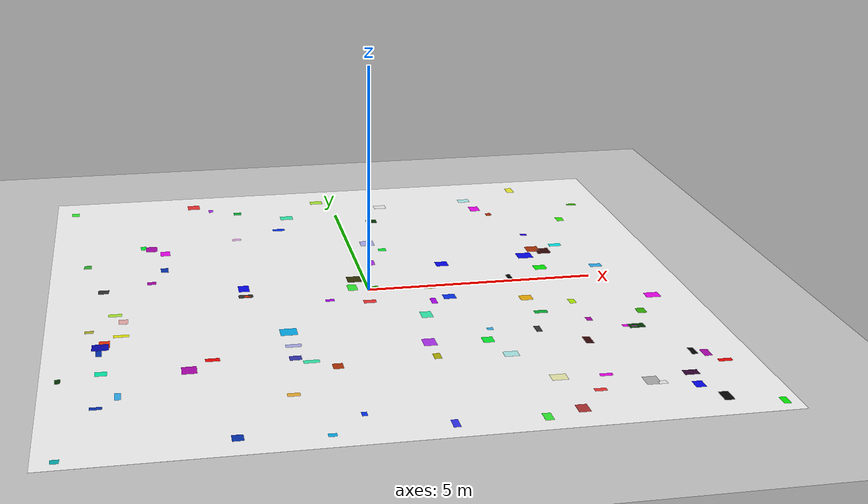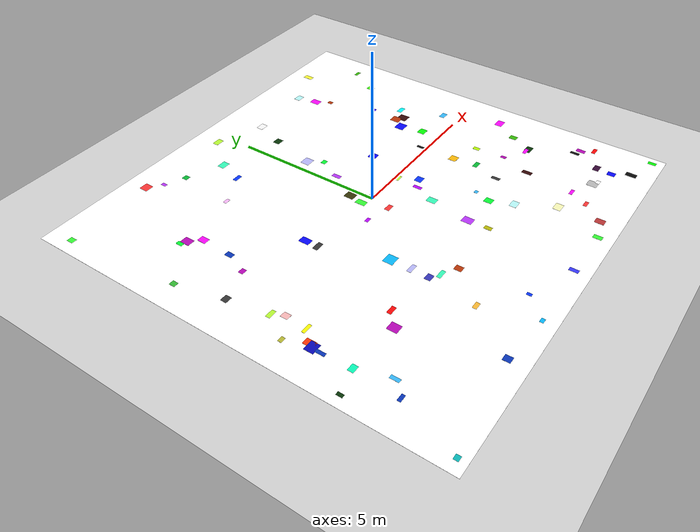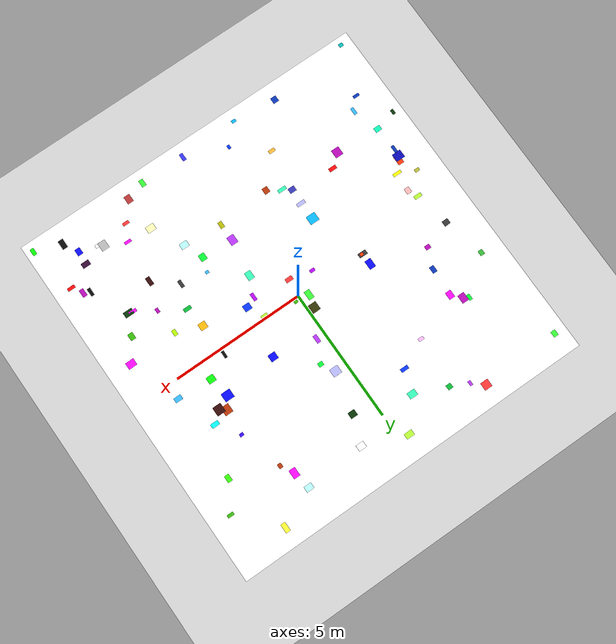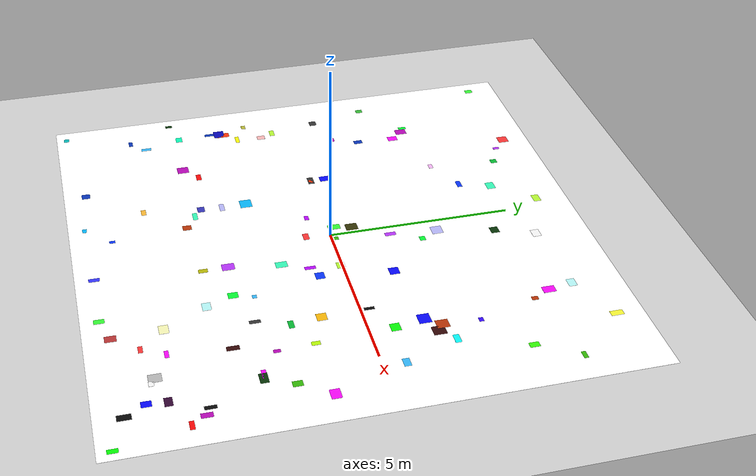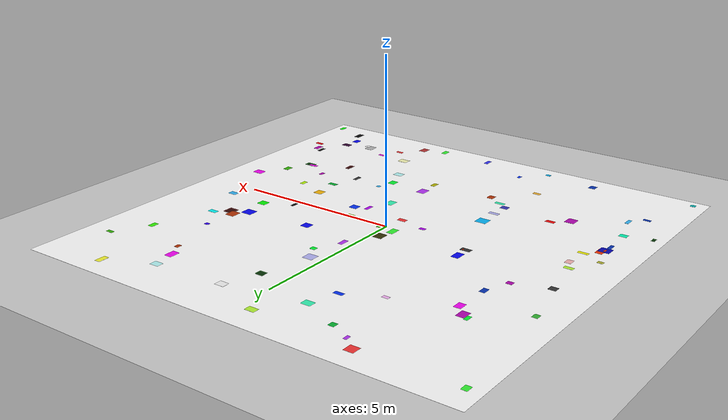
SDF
<sdf version="1.9">
 <world name="default">
  <model name="ground_plane">
   <static>true</static>
   <link name="link">
    <collision name="collision">
     <geometry><plane><normal>0 0 1</normal><size>1 1</size></plane></geometry>
    </collision>
    <visual name="visual">
     <geometry><plane><normal>0 0 1</normal><size>500 500</size></plane></geometry>
     <material>
      <ambient>0.8 0.8 0.8 1</ambient>
      <diffuse>0.8 0.8 0.8 1</diffuse>
      <specular>0.8 0.8 0.8 1</specular>
     </material>
    </visual>
    <inertial>
     <mass>1</mass>
     <inertia><ixx>1</ixx><ixy>0</ixy><ixz>0</ixz><iyy>1</iyy><iyz>0</iyz><izz>1</izz></inertia>
    </inertial>
   </link>
  </model>
  <model name="warehouse_textured_floor">
   <static>true</static>
   <link name="paint">
    <visual name="floor_surface">
     <pose>0 0 0.001 0 0 0</pose>
     <geometry><box><size>13.8 13.8 0.002</size></box></geometry>
     <material>
      <ambient>1 1 1 1</ambient>
      <diffuse>1 1 1 1</diffuse>
      <pbr>
       <metal>
        <albedo_map>model://warehouse_textures/materials/textures/floor.png</albedo_map>
        <metalness>0</metalness>
        <roughness>1</roughness>
       </metal>
      </pbr>
     </material>
    </visual>
   </link>
  </model>
  <model name="warehouse_floor_features">
   <static>true</static>
   <link name="paint">
    <visual name="paint_0">
     <pose>0.32451167921774715 1.5884171789464636 0.002 0 0 0</pose>
     <geometry><box><size>0.14356942643876205 0.30196213444852527 0.002</size></box></geometry>
     <material><ambient>0.7 0.2 0.95 1</ambient><diffuse>0.7 0.2 0.95 1</diffuse></material>
    </visual>
    <visual name="paint_1">
     <pose>-0.3405018327053462 0.174150977606927 0.002 0 0 0</pose>
     <geometry><box><size>0.2082389393504837 0.3388343355821748 0.002</size></box></geometry>
     <material><ambient>0.2 0.95 0.2 1</ambient><diffuse>0.2 0.95 0.2 1</diffuse></material>
    </visual>
    <visual name="paint_2">
     <pose>4.2453955089554265 -2.3465644710829388 0.002 0 0 0</pose>
     <geometry><box><size>0.11743923994719252 0.1812582241868887 0.002</size></box></geometry>
     <material><ambient>0.7 0.03 0.7 1</ambient><diffuse>0.7 0.03 0.7 1</diffuse></material>
    </visual>
    <visual name="paint_3">
     <pose>-5.763320836558967 -2.098971766459446 0.002 0 0 0</pose>
     <geometry><box><size>0.34205885859912716 0.30112848147361504 0.002</size></box></geometry>
     <material><ambient>0.03 0.03 0.7 1</ambient><diffuse>0.03 0.03 0.7 1</diffuse></material>
    </visual>
    <visual name="paint_4">
     <pose>-1.7112417408010483 -3.4340037091235436 0.002 0 0 0</pose>
     <geometry><box><size>0.32020923578637905 0.13175321254289554 0.002</size></box></geometry>
     <material><ambient>0.2 0.95 0.7 1</ambient><diffuse>0.2 0.95 0.7 1</diffuse></material>
    </visual>
    <visual name="paint_5">
     <pose>-6.479452356096627 -6.609298279698521 0.002 0 0 0</pose>
     <geometry><box><size>0.15971590415048786 0.1435087755282658 0.002</size></box></geometry>
     <material><ambient>0.03 0.7 0.7 1</ambient><diffuse>0.03 0.7 0.7 1</diffuse></material>
    </visual>
    <visual name="paint_6">
     <pose>1.2689115141543628 -0.8539144176918585 0.002 0 0 0</pose>
     <geometry><box><size>0.12552086458564032 0.2939839248986573 0.002</size></box></geometry>
     <material><ambient>0.7 0.03 0.95 1</ambient><diffuse>0.7 0.03 0.95 1</diffuse></material>
    </visual>
    <visual name="paint_7">
     <pose>3.557835304350397 4.886141060771419 0.002 0 0 0</pose>
     <geometry><box><size>0.24186991242991426 0.3371609067097572 0.002</size></box></geometry>
     <material><ambient>0.95 0.03 0.95 1</ambient><diffuse>0.95 0.03 0.95 1</diffuse></material>
    </visual>
    <visual name="paint_8">
     <pose>1.3395899125802542 -0.05017054715293945 0.002 0 0 0</pose>
     <geometry><box><size>0.2485330339384911 0.2168866007897095 0.002</size></box></geometry>
     <material><ambient>0.7 0.95 0.2 1</ambient><diffuse>0.7 0.95 0.2 1</diffuse></material>
    </visual>
    <visual name="paint_9">
     <pose>2.0909008860670832 -2.4909522508354653 0.002 0 0 0</pose>
     <geometry><box><size>0.1271911359793571 0.11518978911367644 0.002</size></box></geometry>
     <material><ambient>0.2 0.7 0.95 1</ambient><diffuse>0.2 0.7 0.95 1</diffuse></material>
    </visual>
    <visual name="paint_10">
     <pose>-2.695229726361613 0.49491315764346755 0.002 0 0 0</pose>
     <geometry><box><size>0.23397119537339897 0.3412238112256532 0.002</size></box></geometry>
     <material><ambient>0.03 0.03 0.95 1</ambient><diffuse>0.03 0.03 0.95 1</diffuse></material>
    </visual>
    <visual name="paint_11">
     <pose>-0.3587238350170443 6.03934564080705 0.002 0 0 0</pose>
     <geometry><box><size>0.3029233438147575 0.20641536806330268 0.002</size></box></geometry>
     <material><ambient>0.7 0.95 0.2 1</ambient><diffuse>0.7 0.95 0.2 1</diffuse></material>
    </visual>
    <visual name="paint_12">
     <pose>5.355181843132516 0.5805317546650137 0.002 0 0 0</pose>
     <geometry><box><size>0.2737444657031194 0.18165313674749828 0.002</size></box></geometry>
     <material><ambient>0.2 0.7 0.95 1</ambient><diffuse>0.2 0.7 0.95 1</diffuse></material>
    </visual>
    <visual name="paint_13">
     <pose>5.467936822663037 -2.101949337624178 0.002 0 0 0</pose>
     <geometry><box><size>0.19130534627425577 0.25457010530369306 0.002</size></box></geometry>
     <material><ambient>0.2 0.7 0.03 1</ambient><diffuse>0.2 0.7 0.03 1</diffuse></material>
    </visual>
    <visual name="paint_14">
     <pose>5.4744223540697705 3.7631636655325176 0.002 0 0 0</pose>
     <geometry><box><size>0.172278455653943 0.2604080487487658 0.002</size></box></geometry>
     <material><ambient>0.2 0.95 0.03 1</ambient><diffuse>0.2 0.95 0.03 1</diffuse></material>
    </visual>
    <visual name="paint_15">
     <pose>-2.649238062608271 0.049234822295970204 0.002 0 0 0</pose>
     <geometry><box><size>0.12742310297416856 0.11060968616473335 0.002</size></box></geometry>
     <material><ambient>0.95 0.2 0.03 1</ambient><diffuse>0.95 0.2 0.03 1</diffuse></material>
    </visual>
    <visual name="paint_16">
     <pose>-1.2356418308804313 -3.726256608642457 0.002 0 0 0</pose>
     <geometry><box><size>0.20528206580448882 0.2379104425472646 0.002</size></box></geometry>
     <material><ambient>0.7 0.2 0.03 1</ambient><diffuse>0.7 0.2 0.03 1</diffuse></material>
    </visual>
    <visual name="paint_17">
     <pose>6.0054071283181445 -1.3217255293837855 0.002 0 0 0</pose>
     <geometry><box><size>0.32141814691740556 0.25667575667077946 0.002</size></box></geometry>
     <material><ambient>0.95 0.03 0.95 1</ambient><diffuse>0.95 0.03 0.95 1</diffuse></material>
    </visual>
    <visual name="paint_18">
     <pose>0.7473825697818679 -3.597126313003904 0.002 0 0 0</pose>
     <geometry><box><size>0.1503288642895742 0.24552392403332854 0.002</size></box></geometry>
     <material><ambient>0.7 0.7 0.03 1</ambient><diffuse>0.7 0.7 0.03 1</diffuse></material>
    </visual>
    <visual name="paint_19">
     <pose>0.9596219904515415 -1.5576434282616471 0.002 0 0 0</pose>
     <geometry><box><size>0.23524246517530042 0.31234135975817157 0.002</size></box></geometry>
     <material><ambient>0.2 0.95 0.7 1</ambient><diffuse>0.2 0.95 0.7 1</diffuse></material>
    </visual>
    <visual name="paint_20">
     <pose>4.8304402483134625 6.194288580228343 0.002 0 0 0</pose>
     <geometry><box><size>0.17918842300683796 0.33824514718872245 0.002</size></box></geometry>
     <material><ambient>0.95 0.95 0.2 1</ambient><diffuse>0.95 0.95 0.2 1</diffuse></material>
    </visual>
    <visual name="paint_21">
     <pose>3.366950673963861 -1.809921932629968 0.002 0 0 0</pose>
     <geometry><box><size>0.2807241513614849 0.1442375420481826 0.002</size></box></geometry>
     <material><ambient>0.03 0.7 0.2 1</ambient><diffuse>0.03 0.7 0.2 1</diffuse></material>
    </visual>
    <visual name="paint_22">
     <pose>-3.37511354637866 -6.283704828002198 0.002 0 0 0</pose>
     <geometry><box><size>0.2125336444208949 0.22906498534652456 0.002</size></box></geometry>
     <material><ambient>0.03 0.2 0.7 1</ambient><diffuse>0.03 0.2 0.7 1</diffuse></material>
    </visual>
    <visual name="paint_23">
     <pose>-5.823334716118664 -4.752281343874696 0.002 0 0 0</pose>
     <geometry><box><size>0.23391297500655545 0.11019344439425535 0.002</size></box></geometry>
     <material><ambient>0.03 0.2 0.7 1</ambient><diffuse>0.03 0.2 0.7 1</diffuse></material>
    </visual>
    <visual name="paint_24">
     <pose>-0.9225149205609204 -0.46135233194810343 0.002 0 0 0</pose>
     <geometry><box><size>0.19173886619123953 0.1197030007977343 0.002</size></box></geometry>
     <material><ambient>0.7 0.03 0.95 1</ambient><diffuse>0.7 0.03 0.95 1</diffuse></material>
    </visual>
    <visual name="paint_25">
     <pose>-5.717497755296635 0.8051680948712026 0.002 0 0 0</pose>
     <geometry><box><size>0.22950307914587706 0.20431775489756138 0.002</size></box></geometry>
     <material><ambient>0.2 0.2 0.2 1</ambient><diffuse>0.2 0.2 0.2 1</diffuse></material>
    </visual>
    <visual name="paint_26">
     <pose>6.618003744110617 -6.519812298620999 0.002 0 0 0</pose>
     <geometry><box><size>0.13922243842650303 0.2627070011854034 0.002</size></box></geometry>
     <material><ambient>0.03 0.95 0.03 1</ambient><diffuse>0.03 0.95 0.03 1</diffuse></material>
    </visual>
    <visual name="paint_27">
     <pose>-6.081014713287996 2.367187282750776 0.002 0 0 0</pose>
     <geometry><box><size>0.1685571123393167 0.19721741750586413 0.002</size></box></geometry>
     <material><ambient>0.2 0.7 0.2 1</ambient><diffuse>0.2 0.7 0.2 1</diffuse></material>
    </visual>
    <visual name="paint_28">
     <pose>4.679779209876478 -5.43466828932999 0.002 0 0 0</pose>
     <geometry><box><size>0.16978550570136752 0.1313364734075922 0.002</size></box></geometry>
     <material><ambient>0.95 0.95 0.95 1</ambient><diffuse>0.95 0.95 0.95 1</diffuse></material>
    </visual>
    <visual name="paint_29">
     <pose>-2.597278405831614 3.6246246399486006 0.002 0 0 0</pose>
     <geometry><box><size>0.2005418460725889 0.11923613375536954 0.002</size></box></geometry>
     <material><ambient>0.95 0.7 0.95 1</ambient><diffuse>0.95 0.7 0.95 1</diffuse></material>
    </visual>
    <visual name="paint_30">
     <pose>4.964292332485555 -2.801319759440938 0.002 0 0 0</pose>
     <geometry><box><size>0.2884968496145979 0.11896555703234324 0.002</size></box></geometry>
     <material><ambient>0.95 0.03 0.95 1</ambient><diffuse>0.95 0.03 0.95 1</diffuse></material>
    </visual>
    <visual name="paint_31">
     <pose>-1.7375625045206107 -6.456825200049396 0.002 0 0 0</pose>
     <geometry><box><size>0.16046822693044105 0.11562292770565036 0.002</size></box></geometry>
     <material><ambient>0.03 0.7 0.95 1</ambient><diffuse>0.03 0.7 0.95 1</diffuse></material>
    </visual>
    <visual name="paint_32">
     <pose>0.4392616767983837 2.860378337232649 0.002 0 0 0</pose>
     <geometry><box><size>0.3229534569393736 0.3046694356557469 0.002</size></box></geometry>
     <material><ambient>0.7 0.7 0.95 1</ambient><diffuse>0.7 0.7 0.95 1</diffuse></material>
    </visual>
    <visual name="paint_33">
     <pose>3.740077241660095 -4.948242548601659 0.002 0 0 0</pose>
     <geometry><box><size>0.25469672249597664 0.10764124186900612 0.002</size></box></geometry>
     <material><ambient>0.95 0.03 0.95 1</ambient><diffuse>0.95 0.03 0.95 1</diffuse></material>
    </visual>
    <visual name="paint_34">
     <pose>-5.7893254988183775 -2.373649079432444 0.002 0 0 0</pose>
     <geometry><box><size>0.11521030492772774 0.3019053643551911 0.002</size></box></geometry>
     <material><ambient>0.03 0.2 0.7 1</ambient><diffuse>0.03 0.2 0.7 1</diffuse></material>
    </visual>
    <visual name="paint_35">
     <pose>1.9166777980609622 -3.012404285874271 0.002 0 0 0</pose>
     <geometry><box><size>0.22831270739977869 0.26196151323991534 0.002</size></box></geometry>
     <material><ambient>0.03 0.95 0.2 1</ambient><diffuse>0.03 0.95 0.2 1</diffuse></material>
    </visual>
    <visual name="paint_36">
     <pose>-3.075167568891888 5.815224455578545 0.002 0 0 0</pose>
     <geometry><box><size>0.10601664357428778 0.18415108136603608 0.002</size></box></geometry>
     <material><ambient>0.7 0.2 0.95 1</ambient><diffuse>0.7 0.2 0.95 1</diffuse></material>
    </visual>
    <visual name="paint_37">
     <pose>-1.0619156959789544 -5.769896089714153 0.002 0 0 0</pose>
     <geometry><box><size>0.10400509196010405 0.15635504322473853 0.002</size></box></geometry>
     <material><ambient>0.03 0.2 0.95 1</ambient><diffuse>0.03 0.2 0.95 1</diffuse></material>
    </visual>
    <visual name="paint_38">
     <pose>2.8208829355809515 -4.90127802014913 0.002 0 0 0</pose>
     <geometry><box><size>0.31869157376437995 0.24818749155591702 0.002</size></box></geometry>
     <material><ambient>0.95 0.95 0.7 1</ambient><diffuse>0.95 0.95 0.7 1</diffuse></material>
    </visual>
    <visual name="paint_39">
     <pose>1.201258224130898 5.432831709080248 0.002 0 0 0</pose>
     <geometry><box><size>0.2966336880916607 0.23326330297987627 0.002</size></box></geometry>
     <material><ambient>0.95 0.95 0.95 1</ambient><diffuse>0.95 0.95 0.95 1</diffuse></material>
    </visual>
    <visual name="paint_40">
     <pose>0.7307338979559148 -2.9324401969521103 0.002 0 0 0</pose>
     <geometry><box><size>0.26966071626281674 0.3362069751814859 0.002</size></box></geometry>
     <material><ambient>0.7 0.2 0.95 1</ambient><diffuse>0.7 0.2 0.95 1</diffuse></material>
    </visual>
    <visual name="paint_41">
     <pose>-1.991223004097229 -1.9668746345947694 0.002 0 0 0</pose>
     <geometry><box><size>0.3499060453987357 0.3273138214687338 0.002</size></box></geometry>
     <material><ambient>0.03 0.7 0.95 1</ambient><diffuse>0.03 0.7 0.95 1</diffuse></material>
    </visual>
    <visual name="paint_42">
     <pose>4.2824144893670555 2.8131799675962634 0.002 0 0 0</pose>
     <geometry><box><size>0.14813730995911467 0.11805769054222848 0.002</size></box></geometry>
     <material><ambient>0.2 0.03 0.95 1</ambient><diffuse>0.2 0.03 0.95 1</diffuse></material>
    </visual>
    <visual name="paint_43">
     <pose>-4.365514546743599 1.8998475585457841 0.002 0 0 0</pose>
     <geometry><box><size>0.168397959351047 0.2514017181220553 0.002</size></box></geometry>
     <material><ambient>0.03 0.2 0.7 1</ambient><diffuse>0.03 0.2 0.7 1</diffuse></material>
    </visual>
    <visual name="paint_44">
     <pose>2.8732729695576333 -6.2088233824331684 0.002 0 0 0</pose>
     <geometry><box><size>0.2268149303183049 0.2968919327192665 0.002</size></box></geometry>
     <material><ambient>0.7 0.2 0.2 1</ambient><diffuse>0.7 0.2 0.2 1</diffuse></material>
    </visual>
    <visual name="paint_45">
     <pose>5.6362463778897025 -6.1685563349826245 0.002 0 0 0</pose>
     <geometry><box><size>0.1963123681769196 0.3477574453626576 0.002</size></box></geometry>
     <material><ambient>0.03 0.03 0.03 1</ambient><diffuse>0.03 0.03 0.03 1</diffuse></material>
    </visual>
    <visual name="paint_46">
     <pose>-2.2202228260679453 -4.794678080751822 0.002 0 0 0</pose>
     <geometry><box><size>0.24423094091221187 0.1309052173921208 0.002</size></box></geometry>
     <material><ambient>0.95 0.7 0.2 1</ambient><diffuse>0.95 0.7 0.2 1</diffuse></material>
    </visual>
    <visual name="paint_47">
     <pose>6.238795806125048 -4.700054749229701 0.002 0 0 0</pose>
     <geometry><box><size>0.2778507859074841 0.12171264607338403 0.002</size></box></geometry>
     <material><ambient>0.95 0.03 0.03 1</ambient><diffuse>0.95 0.03 0.03 1</diffuse></material>
    </visual>
    <visual name="paint_48">
     <pose>3.429131519709718 -5.542334507200966 0.002 0 0 0</pose>
     <geometry><box><size>0.23922990170190347 0.11638237543997743 0.002</size></box></geometry>
     <material><ambient>0.95 0.2 0.2 1</ambient><diffuse>0.95 0.2 0.2 1</diffuse></material>
    </visual>
    <visual name="paint_49">
     <pose>-1.999523255065327 -3.224800843077983 0.002 0 0 0</pose>
     <geometry><box><size>0.24230391581202723 0.19744484561159864 0.002</size></box></geometry>
     <material><ambient>0.2 0.2 0.7 1</ambient><diffuse>0.2 0.2 0.7 1</diffuse></material>
    </visual>
    <visual name="paint_50">
     <pose>-4.810070904036052 3.400384333473734 0.002 0 0 0</pose>
     <geometry><box><size>0.1216138362696371 0.2229936798782451 0.002</size></box></geometry>
     <material><ambient>0.03 0.95 0.2 1</ambient><diffuse>0.03 0.95 0.2 1</diffuse></material>
    </visual>
    <visual name="paint_51">
     <pose>-1.969481250987097 -2.645363829538108 0.002 0 0 0</pose>
     <geometry><box><size>0.3235859902983592 0.13699458665219993 0.002</size></box></geometry>
     <material><ambient>0.7 0.7 0.95 1</ambient><diffuse>0.7 0.7 0.95 1</diffuse></material>
    </visual>
    <visual name="paint_52">
     <pose>3.220799941603116 0.22173136359150813 0.002 0 0 0</pose>
     <geometry><box><size>0.10481347097518026 0.2694004298593595 0.002</size></box></geometry>
     <material><ambient>0.03 0.03 0.03 1</ambient><diffuse>0.03 0.03 0.03 1</diffuse></material>
    </visual>
    <visual name="paint_53">
     <pose>2.1995423955228857 -3.73720045625704 0.002 0 0 0</pose>
     <geometry><box><size>0.2975167285966306 0.22649822154426194 0.002</size></box></geometry>
     <material><ambient>0.7 0.95 0.95 1</ambient><diffuse>0.7 0.95 0.95 1</diffuse></material>
    </visual>
    <visual name="paint_54">
     <pose>-2.425796205923362 5.50469875605016 0.002 0 0 0</pose>
     <geometry><box><size>0.18345678154508804 0.1873397748757903 0.002</size></box></geometry>
     <material><ambient>0.03 0.7 0.2 1</ambient><diffuse>0.03 0.7 0.2 1</diffuse></material>
    </visual>
    <visual name="paint_55">
     <pose>4.82291314036761 2.013757347952329 0.002 0 0 0</pose>
     <geometry><box><size>0.29002396481949977 0.16131234465649458 0.002</size></box></geometry>
     <material><ambient>0.03 0.95 0.95 1</ambient><diffuse>0.03 0.95 0.95 1</diffuse></material>
    </visual>
    <visual name="paint_56">
     <pose>4.064322519763118 0.6637866421313605 0.002 0 0 0</pose>
     <geometry><box><size>0.27795405643581095 0.25378353593686553 0.002</size></box></geometry>
     <material><ambient>0.03 0.95 0.03 1</ambient><diffuse>0.03 0.95 0.03 1</diffuse></material>
    </visual>
    <visual name="paint_57">
     <pose>-3.603614845332425 -3.0427100107756364 0.002 0 0 0</pose>
     <geometry><box><size>0.28433241103223517 0.13962022616086608 0.002</size></box></geometry>
     <material><ambient>0.95 0.03 0.03 1</ambient><diffuse>0.95 0.03 0.03 1</diffuse></material>
    </visual>
    <visual name="paint_58">
     <pose>5.999267231901812 -4.322270590911732 0.002 0 0 0</pose>
     <geometry><box><size>0.16215792013891533 0.29610782256873214 0.002</size></box></geometry>
     <material><ambient>0.7 0.03 0.7 1</ambient><diffuse>0.7 0.03 0.7 1</diffuse></material>
    </visual>
    <visual name="paint_59">
     <pose>-4.672569806846638 1.1514234717702116 0.002 0 0 0</pose>
     <geometry><box><size>0.1899694160209992 0.15895147997723397 0.002</size></box></geometry>
     <material><ambient>0.7 0.03 0.7 1</ambient><diffuse>0.7 0.03 0.7 1</diffuse></material>
    </visual>
    <visual name="paint_60">
     <pose>3.8128027082238107 4.412640065693828 0.002 0 0 0</pose>
     <geometry><box><size>0.13789681035809737 0.1742439713171316 0.002</size></box></geometry>
     <material><ambient>0.7 0.2 0.03 1</ambient><diffuse>0.7 0.2 0.03 1</diffuse></material>
    </visual>
    <visual name="paint_61">
     <pose>0.17058850004435389 0.08511340729565298 0.002 0 0 0</pose>
     <geometry><box><size>0.1333738810281289 0.1868402133808404 0.002</size></box></geometry>
     <material><ambient>0.2 0.7 0.03 1</ambient><diffuse>0.2 0.7 0.03 1</diffuse></material>
    </visual>
    <visual name="paint_62">
     <pose>3.9179343697286013 1.4449213632254194 0.002 0 0 0</pose>
     <geometry><box><size>0.3476081713427277 0.32296677483308633 0.002</size></box></geometry>
     <material><ambient>0.03 0.03 0.95 1</ambient><diffuse>0.03 0.03 0.95 1</diffuse></material>
    </visual>
    <visual name="paint_63">
     <pose>-4.314427914293272 2.953015218750326 0.002 0 0 0</pose>
     <geometry><box><size>0.2170865781579419 0.28369827246518353 0.002</size></box></geometry>
     <material><ambient>0.95 0.03 0.95 1</ambient><diffuse>0.95 0.03 0.95 1</diffuse></material>
    </visual>
    <visual name="paint_64">
     <pose>-4.0723962221255805 -3.4330419054762262 0.002 0 0 0</pose>
     <geometry><box><size>0.2951656821117711 0.31972779979402416 0.002</size></box></geometry>
     <material><ambient>0.7 0.03 0.7 1</ambient><diffuse>0.7 0.03 0.7 1</diffuse></material>
    </visual>
    <visual name="paint_65">
     <pose>4.428973245523932 1.67809378586339 0.002 0 0 0</pose>
     <geometry><box><size>0.31738362021542804 0.3378096957042185 0.002</size></box></geometry>
     <material><ambient>0.2 0.03 0.03 1</ambient><diffuse>0.2 0.03 0.03 1</diffuse></material>
    </visual>
    <visual name="paint_66">
     <pose>4.2131223436423975 1.829172413269009 0.002 0 0 0</pose>
     <geometry><box><size>0.3000893541856476 0.32864946979261267 0.002</size></box></geometry>
     <material><ambient>0.7 0.2 0.03 1</ambient><diffuse>0.7 0.2 0.03 1</diffuse></material>
    </visual>
    <visual name="paint_67">
     <pose>1.90245416573923 1.242908847435702 0.002 0 0 0</pose>
     <geometry><box><size>0.2759915108869271 0.2657034443676446 0.002</size></box></geometry>
     <material><ambient>0.03 0.03 0.95 1</ambient><diffuse>0.03 0.03 0.95 1</diffuse></material>
    </visual>
    <visual name="paint_68">
     <pose>0.8078906490320623 4.388945562252901 0.002 0 0 0</pose>
     <geometry><box><size>0.2574501381865148 0.2309690907039569 0.002</size></box></geometry>
     <material><ambient>0.03 0.2 0.03 1</ambient><diffuse>0.03 0.2 0.03 1</diffuse></material>
    </visual>
    <visual name="paint_69">
     <pose>3.895985487105645 -3.358496397498371 0.002 0 0 0</pose>
     <geometry><box><size>0.15926642309719882 0.32306899612396633 0.002</size></box></geometry>
     <material><ambient>0.2 0.03 0.03 1</ambient><diffuse>0.2 0.03 0.03 1</diffuse></material>
    </visual>
    <visual name="paint_70">
     <pose>5.102712978768573 -2.8381520675983793 0.002 0 0 0</pose>
     <geometry><box><size>0.33915437069991894 0.21434949102075157 0.002</size></box></geometry>
     <material><ambient>0.03 0.2 0.03 1</ambient><diffuse>0.03 0.2 0.03 1</diffuse></material>
    </visual>
    <visual name="paint_71">
     <pose>3.0591061853583765 -2.662009141464199 0.002 0 0 0</pose>
     <geometry><box><size>0.12382351978490885 0.2891957608851266 0.002</size></box></geometry>
     <material><ambient>0.2 0.2 0.2 1</ambient><diffuse>0.2 0.2 0.2 1</diffuse></material>
    </visual>
    <visual name="paint_72">
     <pose>4.504035406467666 -5.326545128432141 0.002 0 0 0</pose>
     <geometry><box><size>0.28442512348179516 0.3307472368066303 0.002</size></box></geometry>
     <material><ambient>0.7 0.7 0.7 1</ambient><diffuse>0.7 0.7 0.7 1</diffuse></material>
    </visual>
    <visual name="paint_73">
     <pose>-5.687476406211128 -1.9725595238117917 0.002 0 0 0</pose>
     <geometry><box><size>0.217226090295714 0.33792797036041045 0.002</size></box></geometry>
     <material><ambient>0.95 0.2 0.03 1</ambient><diffuse>0.95 0.2 0.03 1</diffuse></material>
    </visual>
    <visual name="paint_74">
     <pose>-0.2286941848233104 0.6431375863073736 0.002 0 0 0</pose>
     <geometry><box><size>0.31039991073885087 0.3276285153831948 0.002</size></box></geometry>
     <material><ambient>0.2 0.2 0.03 1</ambient><diffuse>0.2 0.2 0.03 1</diffuse></material>
    </visual>
    <visual name="paint_75">
     <pose>1.6504861660228771 -0.6797285575052863 0.002 0 0 0</pose>
     <geometry><box><size>0.26767067550810525 0.24385958726851448 0.002</size></box></geometry>
     <material><ambient>0.03 0.2 0.95 1</ambient><diffuse>0.03 0.2 0.95 1</diffuse></material>
    </visual>
    <visual name="paint_76">
     <pose>-5.738891063544227 -3.3167336013655535 0.002 0 0 0</pose>
     <geometry><box><size>0.23946028954261514 0.18457151326458643 0.002</size></box></geometry>
     <material><ambient>0.03 0.95 0.7 1</ambient><diffuse>0.03 0.95 0.7 1</diffuse></material>
    </visual>
    <visual name="paint_77">
     <pose>-6.449653719107242 6.087322239758 0.002 0 0 0</pose>
     <geometry><box><size>0.1759561653365282 0.2193679959647537 0.002</size></box></geometry>
     <material><ambient>0.2 0.95 0.2 1</ambient><diffuse>0.2 0.95 0.2 1</diffuse></material>
    </visual>
    <visual name="paint_78">
     <pose>-5.4287397600378995 -4.333128576030805 0.002 0 0 0</pose>
     <geometry><box><size>0.11835543248914762 0.284537131003186 0.002</size></box></geometry>
     <material><ambient>0.2 0.7 0.95 1</ambient><diffuse>0.2 0.7 0.95 1</diffuse></material>
    </visual>
    <visual name="paint_79">
     <pose>-4.622201044873312 3.2965940197306205 0.002 0 0 0</pose>
     <geometry><box><size>0.25116576378239386 0.3196476707231083 0.002</size></box></geometry>
     <material><ambient>0.7 0.03 0.7 1</ambient><diffuse>0.7 0.03 0.7 1</diffuse></material>
    </visual>
    <visual name="paint_80">
     <pose>-5.299019190781163 -0.8887274222264221 0.002 0 0 0</pose>
     <geometry><box><size>0.1910993264524437 0.23082905207179136 0.002</size></box></geometry>
     <material><ambient>0.95 0.7 0.7 1</ambient><diffuse>0.95 0.7 0.7 1</diffuse></material>
    </visual>
    <visual name="paint_81">
     <pose>-1.243399911167046 4.988364457529866 0.002 0 0 0</pose>
     <geometry><box><size>0.30241928688550557 0.23784615826746447 0.002</size></box></geometry>
     <material><ambient>0.2 0.95 0.7 1</ambient><diffuse>0.2 0.95 0.7 1</diffuse></material>
    </visual>
    <visual name="paint_82">
     <pose>-5.350928601543599 -1.6046577749705602 0.002 0 0 0</pose>
     <geometry><box><size>0.32046252553545185 0.11349443132465675 0.002</size></box></geometry>
     <material><ambient>0.95 0.95 0.03 1</ambient><diffuse>0.95 0.95 0.03 1</diffuse></material>
    </visual>
    <visual name="paint_83">
     <pose>3.43266412967379 5.556067259527029 0.002 0 0 0</pose>
     <geometry><box><size>0.2878865043924736 0.2202371458407914 0.002</size></box></geometry>
     <material><ambient>0.7 0.95 0.95 1</ambient><diffuse>0.7 0.95 0.95 1</diffuse></material>
    </visual>
    <visual name="paint_84">
     <pose>-2.68545240439681 0.05766157445118125 0.002 0 0 0</pose>
     <geometry><box><size>0.31329594906828034 0.1682348948733423 0.002</size></box></geometry>
     <material><ambient>0.2 0.2 0.2 1</ambient><diffuse>0.2 0.2 0.2 1</diffuse></material>
    </visual>
    <visual name="paint_85">
     <pose>-6.545902999269236 -3.5196283123151506 0.002 0 0 0</pose>
     <geometry><box><size>0.1085248230754477 0.19320497456448282 0.002</size></box></geometry>
     <material><ambient>0.03 0.2 0.03 1</ambient><diffuse>0.03 0.2 0.03 1</diffuse></material>
    </visual>
    <visual name="paint_86">
     <pose>-1.5301111751021983 4.14014932338526 0.002 0 0 0</pose>
     <geometry><box><size>0.2865136904462767 0.13702313122387721 0.002</size></box></geometry>
     <material><ambient>0.03 0.2 0.95 1</ambient><diffuse>0.03 0.2 0.95 1</diffuse></material>
    </visual>
    <visual name="paint_87">
     <pose>-5.467640000826971 -0.5236429328434768 0.002 0 0 0</pose>
     <geometry><box><size>0.28353998927809104 0.13854982271279281 0.002</size></box></geometry>
     <material><ambient>0.7 0.95 0.2 1</ambient><diffuse>0.7 0.95 0.2 1</diffuse></material>
    </visual>
    <visual name="paint_88">
     <pose>-0.08597970710733094 -0.6627033254905585 0.002 0 0 0</pose>
     <geometry><box><size>0.2710431604199238 0.16017794369922117 0.002</size></box></geometry>
     <material><ambient>0.95 0.2 0.2 1</ambient><diffuse>0.95 0.2 0.2 1</diffuse></material>
    </visual>
    <visual name="paint_89">
     <pose>2.1565757097194753 -6.4184784721764645 0.002 0 0 0</pose>
     <geometry><box><size>0.16556658607875313 0.273547610824199 0.002</size></box></geometry>
     <material><ambient>0.2 0.95 0.2 1</ambient><diffuse>0.2 0.95 0.2 1</diffuse></material>
    </visual>
    <visual name="paint_90">
     <pose>6.096656252144968 4.805767289894935 0.002 0 0 0</pose>
     <geometry><box><size>0.23466610733507368 0.11630492386056021 0.002</size></box></geometry>
     <material><ambient>0.2 0.7 0.03 1</ambient><diffuse>0.2 0.7 0.03 1</diffuse></material>
    </visual>
    <visual name="paint_91">
     <pose>-3.4898000494936383 6.169418586281229 0.002 0 0 0</pose>
     <geometry><box><size>0.2927462872898885 0.292657250293422 0.002</size></box></geometry>
     <material><ambient>0.95 0.2 0.2 1</ambient><diffuse>0.95 0.2 0.2 1</diffuse></material>
    </visual>
    <visual name="paint_92">
     <pose>5.325574159277859 -5.626991323618387 0.002 0 0 0</pose>
     <geometry><box><size>0.19873427157881873 0.25511190250197824 0.002</size></box></geometry>
     <material><ambient>0.03 0.03 0.95 1</ambient><diffuse>0.03 0.03 0.95 1</diffuse></material>
    </visual>
    <visual name="paint_93">
     <pose>0.4735862484063533 -6.391488649080498 0.002 0 0 0</pose>
     <geometry><box><size>0.13523999708733137 0.28731152380412117 0.002</size></box></geometry>
     <material><ambient>0.2 0.2 0.95 1</ambient><diffuse>0.2 0.2 0.95 1</diffuse></material>
    </visual>
    <visual name="paint_94">
     <pose>3.2636369946517307 -1.016545066481111 0.002 0 0 0</pose>
     <geometry><box><size>0.2697937261468562 0.2633863567312825 0.002</size></box></geometry>
     <material><ambient>0.95 0.7 0.03 1</ambient><diffuse>0.95 0.7 0.03 1</diffuse></material>
    </visual>
    <visual name="paint_95">
     <pose>5.368053400535808 -5.119437324191443 0.002 0 0 0</pose>
     <geometry><box><size>0.2960922929777 0.2010702161248144 0.002</size></box></geometry>
     <material><ambient>0.2 0.03 0.2 1</ambient><diffuse>0.2 0.03 0.2 1</diffuse></material>
    </visual>
    <visual name="paint_96">
     <pose>-5.993589529908818 -1.3090363090920976 0.002 0 0 0</pose>
     <geometry><box><size>0.18029062363302467 0.1229137224717071 0.002</size></box></geometry>
     <material><ambient>0.7 0.7 0.2 1</ambient><diffuse>0.7 0.7 0.2 1</diffuse></material>
    </visual>
    <visual name="paint_97">
     <pose>5.768272503643591 -4.2026119498605325 0.002 0 0 0</pose>
     <geometry><box><size>0.12182801443566543 0.30224880789767083 0.002</size></box></geometry>
     <material><ambient>0.03 0.03 0.03 1</ambient><diffuse>0.03 0.03 0.03 1</diffuse></material>
    </visual>
    <visual name="paint_98">
     <pose>4.1873614038102795 -1.3724392563449221 0.002 0 0 0</pose>
     <geometry><box><size>0.13811891539369422 0.22580802590996904 0.002</size></box></geometry>
     <material><ambient>0.7 0.95 0.03 1</ambient><diffuse>0.7 0.95 0.03 1</diffuse></material>
    </visual>
    <visual name="paint_99">
     <pose>0.7183762034202283 2.3777738517954914 0.002 0 0 0</pose>
     <geometry><box><size>0.18017743621808874 0.16032651786259222 0.002</size></box></geometry>
     <material><ambient>0.03 0.95 0.2 1</ambient><diffuse>0.03 0.95 0.2 1</diffuse></material>
    </visual>
   </link>
  </model>
 </world>
</sdf>
